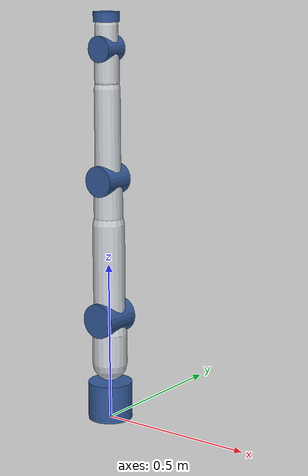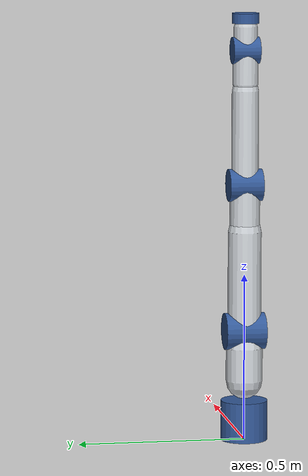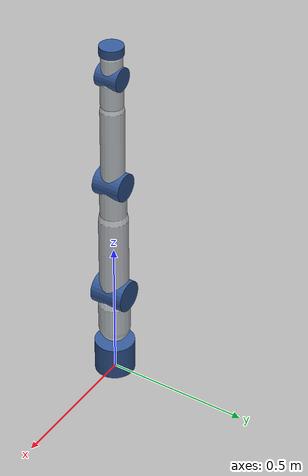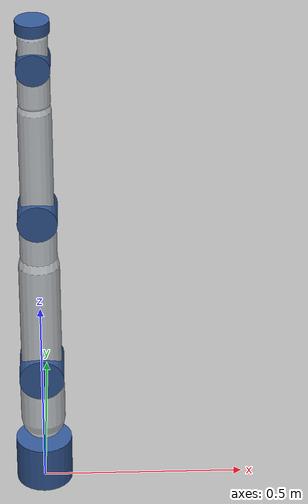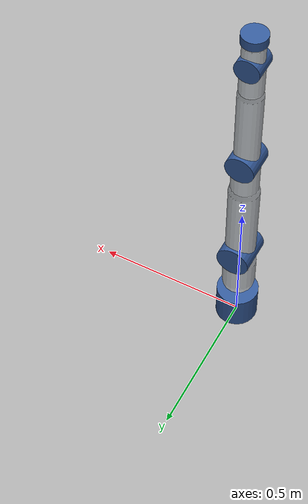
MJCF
<mujoco model="arm7">
  <compiler angle="radian" autolimits="true"/>
  <option timestep="0.002"/>

  <default>
    <default class="arm7">
      <joint type="hinge" armature="0.05" damping="0.5" frictionloss="0"/>
      <geom type="capsule" contype="1" conaffinity="1" condim="3" group="2" rgba=".82 .84 .86 1"/>
      <site group="3"/>
      <default class="arm7/accent">
        <geom rgba=".2 .35 .6 1"/>
      </default>
    </default>
  </default>

  <worldbody>
    <body name="link0" childclass="arm7">
      <geom name="base" type="cylinder" fromto="0 0 0 0 0 0.12" size="0.07" mass="4" class="arm7/accent"/>

      <body name="link1" pos="0 0 0.12">
        <joint name="j1" axis="0 0 1" range="-2.9 2.9"/>
        <geom name="link1" fromto="0 0 0.06 0 0 0.16" size="0.055" mass="3"/>

        <body name="link2" pos="0 0 0.21">
          <joint name="j2" axis="0 1 0" range="-1.8 1.8"/>
          <geom name="link2_hub" type="cylinder" fromto="0 -0.06 0 0 0.06 0" size="0.055" mass="1" class="arm7/accent"/>
          <geom name="link2" fromto="0 0 0 0 0 0.3" size="0.05" mass="2.5"/>

          <body name="link3" pos="0 0 0.3">
            <joint name="j3" axis="0 0 1" range="-2.9 2.9"/>
            <geom name="link3" fromto="0 0 0.02 0 0 0.12" size="0.045" mass="1.5"/>

            <body name="link4" pos="0 0 0.14">
              <joint name="j4" axis="0 1 0" range="-0.1 2.9"/>
              <geom name="link4_hub" type="cylinder" fromto="0 -0.05 0 0 0.05 0" size="0.048" mass="0.8" class="arm7/accent"/>
              <geom name="link4" fromto="0 0 0 0 0 0.28" size="0.04" mass="1.8"/>

              <body name="link5" pos="0 0 0.28">
                <joint name="j5" axis="0 0 1" range="-2.9 2.9"/>
                <geom name="link5" fromto="0 0 0.02 0 0 0.1" size="0.038" mass="1.0"/>

                <body name="link6" pos="0 0 0.12">
                  <joint name="j6" axis="0 1 0" range="-2.2 2.2"/>
                  <geom name="link6_hub" type="cylinder" fromto="0 -0.04 0 0 0.04 0" size="0.04" mass="0.5" class="arm7/accent"/>
                  <geom name="link6" fromto="0 0 0 0 0 0.07" size="0.035" mass="0.6"/>

                  <body name="link7" pos="0 0 0.08">
                    <joint name="j7" axis="0 0 1" range="-2.9 2.9"/>
                    <geom name="flange" type="cylinder" fromto="0 0 0 0 0 0.03" size="0.04" mass="0.3" class="arm7/accent"/>
                    <site name="flange" pos="0 0 0.03"/>
                    <site name="ee" pos="0 0 0.13" size="0.01" rgba="1 .8 0 1"/>
                  </body>
                </body>
              </body>
            </body>
          </body>
        </body>
      </body>
    </body>
  </worldbody>

  <actuator>
    <!-- Torque motors. ctrl is joint torque in N m; ctrlrange is the actuator limit. -->
    <motor name="a1" joint="j1" ctrlrange="-80 80"/>
    <motor name="a2" joint="j2" ctrlrange="-80 80"/>
    <motor name="a3" joint="j3" ctrlrange="-60 60"/>
    <motor name="a4" joint="j4" ctrlrange="-60 60"/>
    <motor name="a5" joint="j5" ctrlrange="-20 20"/>
    <motor name="a6" joint="j6" ctrlrange="-20 20"/>
    <motor name="a7" joint="j7" ctrlrange="-10 10"/>
  </actuator>

  <sensor>
    <framepos name="ee_pos" objtype="site" objname="ee"/>
    <framequat name="ee_quat" objtype="site" objname="ee"/>
  </sensor>

  <keyframe>
    <key name="zero" qpos="0 0 0 0 0 0 0"/>
    <key name="home" qpos="0 0.5 0 1.6 0 1.0416 0"/>
  </keyframe>
</mujoco>
